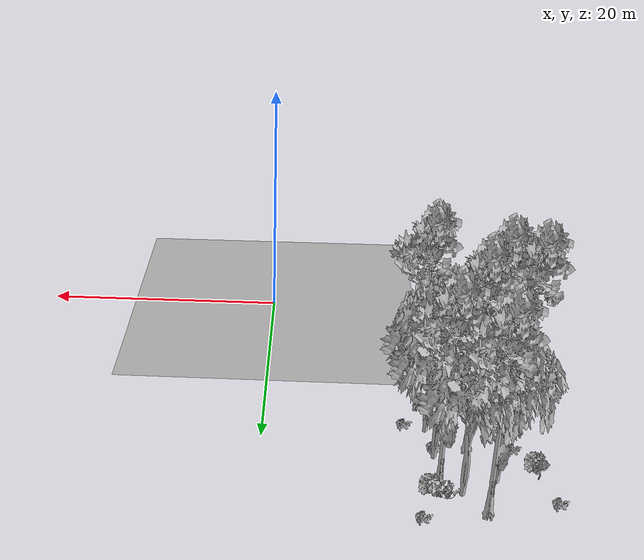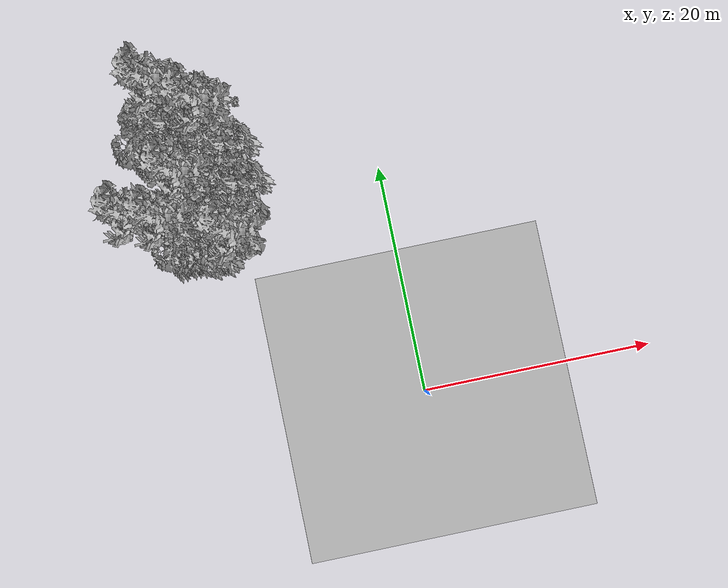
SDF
<sdf version="1.7">
 <world name="default">
  <model name="ground_plane">
   <static>1</static>
   <link name="link">
    <collision name="collision">
     <pose>-50 0 0 0 -0 0</pose>
     <geometry><plane><normal>0 0 1</normal><size>80 80</size></plane></geometry>
     <surface><contact><ode><min_depth>0.01</min_depth><max_vel>0</max_vel></ode></contact></surface>
    </collision>
    <visual name="grass">
     <cast_shadows>0</cast_shadows>
     <geometry>
      <mesh>
       <scale>0.46714285714285714 0.46714285714285714 0.1</scale>
       <uri>file://grass_plane/meshes/grass_plane.dae</uri>
      </mesh>
     </geometry>
    </visual>
   </link>
  </model>
  <model name="Tree 8">
   <static>1</static>
   <pose>-14.362451058432324 25.868436566336598 0 1.57079 -0 0</pose>
   <link name="link">
    <collision name="collision">
     <geometry><mesh><scale>3.5 5 3.5</scale><uri>model://tree_2/meshes/tree_2.obj</uri></mesh></geometry>
    </collision>
    <visual name="visual">
     <geometry><mesh><scale>3.5 5 3.5</scale><uri>model://tree_2/meshes/tree_2.obj</uri></mesh></geometry>
    </visual>
   </link>
  </model>
  <model name="Tree 38">
   <static>1</static>
   <pose>-13.788688741199014 19.644884701380832 0 1.57079 -0 0</pose>
   <link name="link">
    <collision name="collision">
     <geometry><mesh><scale>3.5 5 3.5</scale><uri>model://tree_2/meshes/tree_2.obj</uri></mesh></geometry>
    </collision>
    <visual name="visual">
     <geometry><mesh><scale>3.5 5 3.5</scale><uri>model://tree_2/meshes/tree_2.obj</uri></mesh></geometry>
    </visual>
   </link>
  </model>
  <model name="Tree 96">
   <static>1</static>
   <pose>-12.328476556017574 18.637836693007024 0 1.57079 -0 0</pose>
   <link name="link">
    <collision name="collision">
     <geometry><mesh><scale>3.5 5 3.5</scale><uri>model://tree_2/meshes/tree_2.obj</uri></mesh></geometry>
    </collision>
    <visual name="visual">
     <geometry><mesh><scale>3.5 5 3.5</scale><uri>model://tree_2/meshes/tree_2.obj</uri></mesh></geometry>
    </visual>
   </link>
  </model>
  <model name="Tree 104">
   <static>1</static>
   <pose>-12.720449311820357 21.82128981789809 0 1.57079 -0 0</pose>
   <link name="link">
    <collision name="collision">
     <geometry><mesh><scale>3.5 5 3.5</scale><uri>model://tree_2/meshes/tree_2.obj</uri></mesh></geometry>
    </collision>
    <visual name="visual">
     <geometry><mesh><scale>3.5 5 3.5</scale><uri>model://tree_2/meshes/tree_2.obj</uri></mesh></geometry>
    </visual>
   </link>
  </model>
  <model name="Tree 194">
   <static>1</static>
   <pose>-19.2509011162898 17.90060257176517 0 1.57079 -0 0</pose>
   <link name="link">
    <collision name="collision">
     <geometry><mesh><scale>3.5 5 3.5</scale><uri>model://tree_9/meshes/tree_9.obj</uri></mesh></geometry>
    </collision>
    <visual name="visual">
     <geometry><mesh><scale>3.5 5 3.5</scale><uri>model://tree_9/meshes/tree_9.obj</uri></mesh></geometry>
    </visual>
   </link>
  </model>
  <model name="Tree 284">
   <static>1</static>
   <pose>-15.899057503096486 27.41241027932682 0 1.57079 -0 0</pose>
   <link name="link">
    <collision name="collision">
     <geometry><mesh><scale>3.5 5 3.5</scale><uri>model://tree_9/meshes/tree_9.obj</uri></mesh></geometry>
    </collision>
    <visual name="visual">
     <geometry><mesh><scale>3.5 5 3.5</scale><uri>model://tree_9/meshes/tree_9.obj</uri></mesh></geometry>
    </visual>
   </link>
  </model>
  <model name="Tree 287">
   <static>1</static>
   <pose>-14.315437980789753 15.746902786021842 0 1.57079 -0 0</pose>
   <link name="link">
    <collision name="collision">
     <geometry><mesh><scale>3.5 5 3.5</scale><uri>model://tree_2/meshes/tree_2.obj</uri></mesh></geometry>
    </collision>
    <visual name="visual">
     <geometry><mesh><scale>3.5 5 3.5</scale><uri>model://tree_2/meshes/tree_2.obj</uri></mesh></geometry>
    </visual>
   </link>
  </model>
  <model name="Tree 358">
   <static>1</static>
   <pose>-11.959284210327695 15.014368358086223 0 1.57079 -0 0</pose>
   <link name="link">
    <collision name="collision">
     <geometry><mesh><scale>3.5 5 3.5</scale><uri>model://tree_9/meshes/tree_9.obj</uri></mesh></geometry>
    </collision>
    <visual name="visual">
     <geometry><mesh><scale>3.5 5 3.5</scale><uri>model://tree_9/meshes/tree_9.obj</uri></mesh></geometry>
    </visual>
   </link>
  </model>
  <model name="Tree 430">
   <static>1</static>
   <pose>-12.707829519882797 25.206294421639456 0 1.57079 -0 0</pose>
   <link name="link">
    <collision name="collision">
     <geometry><mesh><scale>3.5 5 3.5</scale><uri>model://tree_9/meshes/tree_9.obj</uri></mesh></geometry>
    </collision>
    <visual name="visual">
     <geometry><mesh><scale>3.5 5 3.5</scale><uri>model://tree_9/meshes/tree_9.obj</uri></mesh></geometry>
    </visual>
   </link>
  </model>
  <model name="Tree 435">
   <static>1</static>
   <pose>-15.396877794177406 15.716825606899576 0 1.57079 -0 0</pose>
   <link name="link">
    <collision name="collision">
     <geometry><mesh><scale>3.5 5 3.5</scale><uri>model://tree_2/meshes/tree_2.obj</uri></mesh></geometry>
    </collision>
    <visual name="visual">
     <geometry><mesh><scale>3.5 5 3.5</scale><uri>model://tree_2/meshes/tree_2.obj</uri></mesh></geometry>
    </visual>
   </link>
  </model>
  <model name="Tree 565">
   <static>1</static>
   <pose>-17.02347939573483 17.13196259312233 0 1.57079 -0 0</pose>
   <link name="link">
    <collision name="collision">
     <geometry><mesh><scale>3.5 5 3.5</scale><uri>model://tree_9/meshes/tree_9.obj</uri></mesh></geometry>
    </collision>
    <visual name="visual">
     <geometry><mesh><scale>3.5 5 3.5</scale><uri>model://tree_9/meshes/tree_9.obj</uri></mesh></geometry>
    </visual>
   </link>
  </model>
  <model name="Tree 602">
   <static>1</static>
   <pose>-15.185753230306261 20.260446667146034 0 1.57079 -0 0</pose>
   <link name="link">
    <collision name="collision">
     <geometry><mesh><scale>3.5 5 3.5</scale><uri>model://tree_9/meshes/tree_9.obj</uri></mesh></geometry>
    </collision>
    <visual name="visual">
     <geometry><mesh><scale>3.5 5 3.5</scale><uri>model://tree_9/meshes/tree_9.obj</uri></mesh></geometry>
    </visual>
   </link>
  </model>
  <model name="Tree 636">
   <static>1</static>
   <pose>-16.876452431731984 24.37347328912081 0 1.57079 -0 0</pose>
   <link name="link">
    <collision name="collision">
     <geometry><mesh><scale>3.5 5 3.5</scale><uri>model://tree_2/meshes/tree_2.obj</uri></mesh></geometry>
    </collision>
    <visual name="visual">
     <geometry><mesh><scale>3.5 5 3.5</scale><uri>model://tree_2/meshes/tree_2.obj</uri></mesh></geometry>
    </visual>
   </link>
  </model>
  <model name="Bush 0">
   <static>1</static>
   <pose>-10.672590305930438 17.979200207677764 0 1.57079 -0 0</pose>
   <link name="link">
    <collision name="collision">
     <geometry><mesh><scale>2 2 2</scale><uri>model://bush_2/meshes/bush_2.obj</uri></mesh></geometry>
     <surface><contact><collide_without_contact>false</collide_without_contact></contact></surface>
    </collision>
    <visual name="visual">
     <geometry><mesh><scale>2 2 2</scale><uri>model://bush_2/meshes/bush_2.obj</uri></mesh></geometry>
    </visual>
   </link>
  </model>
  <model name="Bush 212">
   <static>1</static>
   <pose>-11.994506415787924 25.90993642577834 0 1.57079 -0 0</pose>
   <link name="link">
    <collision name="collision">
     <geometry><mesh><scale>2 2 2</scale><uri>model://bush_1/meshes/bush_1.obj</uri></mesh></geometry>
     <surface><contact><collide_without_contact>false</collide_without_contact></contact></surface>
    </collision>
    <visual name="visual">
     <geometry><mesh><scale>2 2 2</scale><uri>model://bush_1/meshes/bush_1.obj</uri></mesh></geometry>
    </visual>
   </link>
  </model>
  <model name="Bush 283">
   <static>1</static>
   <pose>-12.72158896787833 20.693609859622427 0 1.57079 -0 0</pose>
   <link name="link">
    <collision name="collision">
     <geometry><mesh><scale>2 2 2</scale><uri>model://bush_2/meshes/bush_2.obj</uri></mesh></geometry>
     <surface><contact><collide_without_contact>false</collide_without_contact></contact></surface>
    </collision>
    <visual name="visual">
     <geometry><mesh><scale>2 2 2</scale><uri>model://bush_2/meshes/bush_2.obj</uri></mesh></geometry>
    </visual>
   </link>
  </model>
  <model name="Bush 321">
   <static>1</static>
   <pose>-18.47757841581472 20.60119890441537 0 1.57079 -0 0</pose>
   <link name="link">
    <collision name="collision">
     <geometry><mesh><scale>2 2 2</scale><uri>model://bush_2/meshes/bush_2.obj</uri></mesh></geometry>
     <surface><contact><collide_without_contact>false</collide_without_contact></contact></surface>
    </collision>
    <visual name="visual">
     <geometry><mesh><scale>2 2 2</scale><uri>model://bush_2/meshes/bush_2.obj</uri></mesh></geometry>
    </visual>
   </link>
  </model>
  <model name="Bush 369">
   <static>1</static>
   <pose>-20.840850705131405 26.500187277391774 0 1.57079 -0 0</pose>
   <link name="link">
    <collision name="collision">
     <geometry><mesh><scale>2 2 2</scale><uri>model://bush_2/meshes/bush_2.obj</uri></mesh></geometry>
     <surface><contact><collide_without_contact>false</collide_without_contact></contact></surface>
    </collision>
    <visual name="visual">
     <geometry><mesh><scale>2 2 2</scale><uri>model://bush_2/meshes/bush_2.obj</uri></mesh></geometry>
    </visual>
   </link>
  </model>
  <model name="Bush 447">
   <static>1</static>
   <pose>-19.59756938475816 23.008678415421073 0 1.57079 -0 0</pose>
   <link name="link">
    <collision name="collision">
     <geometry><mesh><scale>2 2 2</scale><uri>model://bush_1/meshes/bush_1.obj</uri></mesh></geometry>
     <surface><contact><collide_without_contact>false</collide_without_contact></contact></surface>
    </collision>
    <visual name="visual">
     <geometry><mesh><scale>2 2 2</scale><uri>model://bush_1/meshes/bush_1.obj</uri></mesh></geometry>
    </visual>
   </link>
  </model>
  <model name="Bush 474">
   <static>1</static>
   <pose>-11.43444605439618 28.486090040396007 0 1.57079 -0 0</pose>
   <link name="link">
    <collision name="collision">
     <geometry><mesh><scale>2 2 2</scale><uri>model://bush_2/meshes/bush_2.obj</uri></mesh></geometry>
     <surface><contact><collide_without_contact>false</collide_without_contact></contact></surface>
    </collision>
    <visual name="visual">
     <geometry><mesh><scale>2 2 2</scale><uri>model://bush_2/meshes/bush_2.obj</uri></mesh></geometry>
    </visual>
   </link>
  </model>
  <model name="Bush 485">
   <static>1</static>
   <pose>-13.235135050963574 26.346526431128424 0 1.57079 -0 0</pose>
   <link name="link">
    <collision name="collision">
     <geometry><mesh><scale>2 2 2</scale><uri>model://bush_4/meshes/bush_4.obj</uri></mesh></geometry>
     <surface><contact><collide_without_contact>false</collide_without_contact></contact></surface>
    </collision>
    <visual name="visual">
     <geometry><mesh><scale>2 2 2</scale><uri>model://bush_4/meshes/bush_4.obj</uri></mesh></geometry>
    </visual>
   </link>
  </model>
  <model name="Bush 543">
   <static>1</static>
   <pose>-19.78679034137602 23.951109115316655 0 1.57079 -0 0</pose>
   <link name="link">
    <collision name="collision">
     <geometry><mesh><scale>2 2 2</scale><uri>model://bush_5/meshes/bush_5.obj</uri></mesh></geometry>
     <surface><contact><collide_without_contact>false</collide_without_contact></contact></surface>
    </collision>
    <visual name="visual">
     <geometry><mesh><scale>2 2 2</scale><uri>model://bush_5/meshes/bush_5.obj</uri></mesh></geometry>
    </visual>
   </link>
  </model>
  <model name="Bush 624">
   <static>1</static>
   <pose>-16.797108940766464 19.391286647416678 0 1.57079 -0 0</pose>
   <link name="link">
    <collision name="collision">
     <geometry><mesh><scale>2 2 2</scale><uri>model://bush_2/meshes/bush_2.obj</uri></mesh></geometry>
     <surface><contact><collide_without_contact>false</collide_without_contact></contact></surface>
    </collision>
    <visual name="visual">
     <geometry><mesh><scale>2 2 2</scale><uri>model://bush_2/meshes/bush_2.obj</uri></mesh></geometry>
    </visual>
   </link>
  </model>
 </world>
</sdf>
